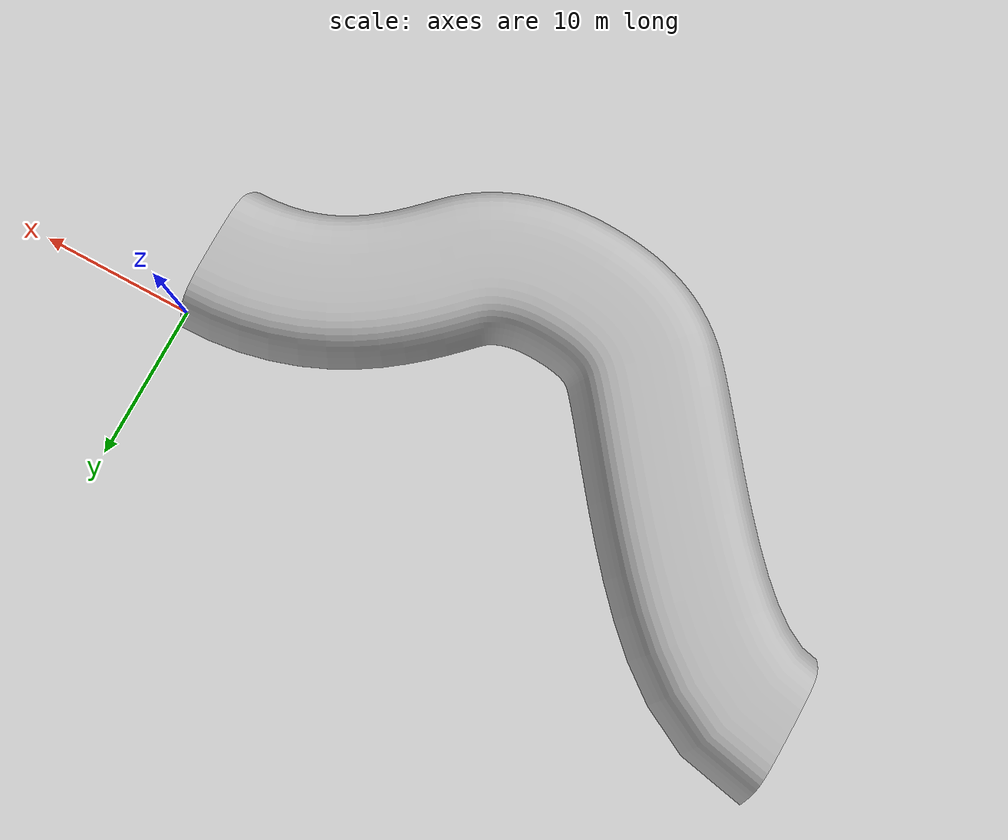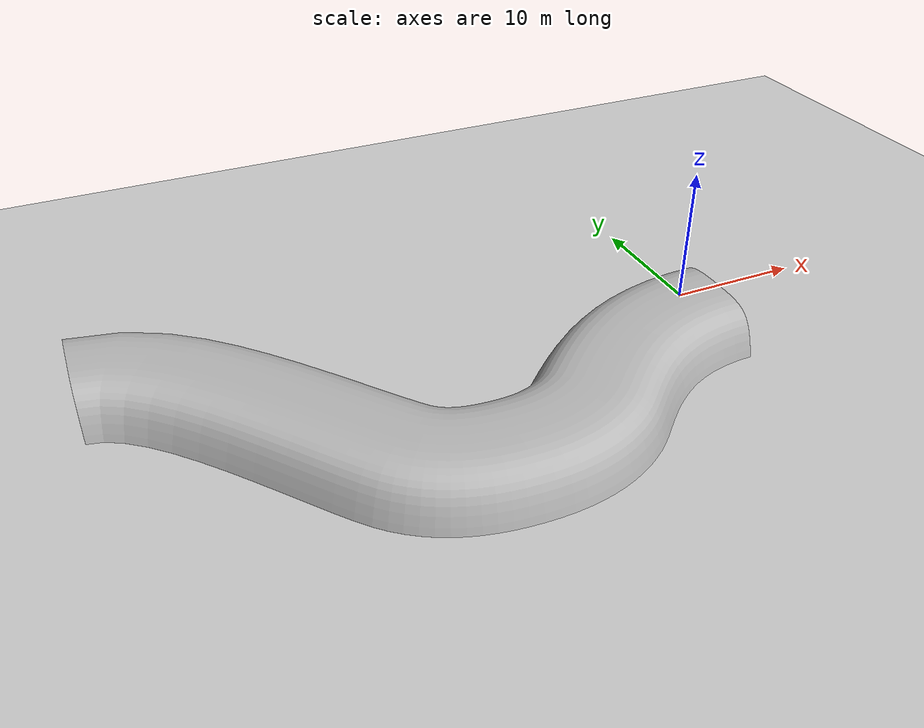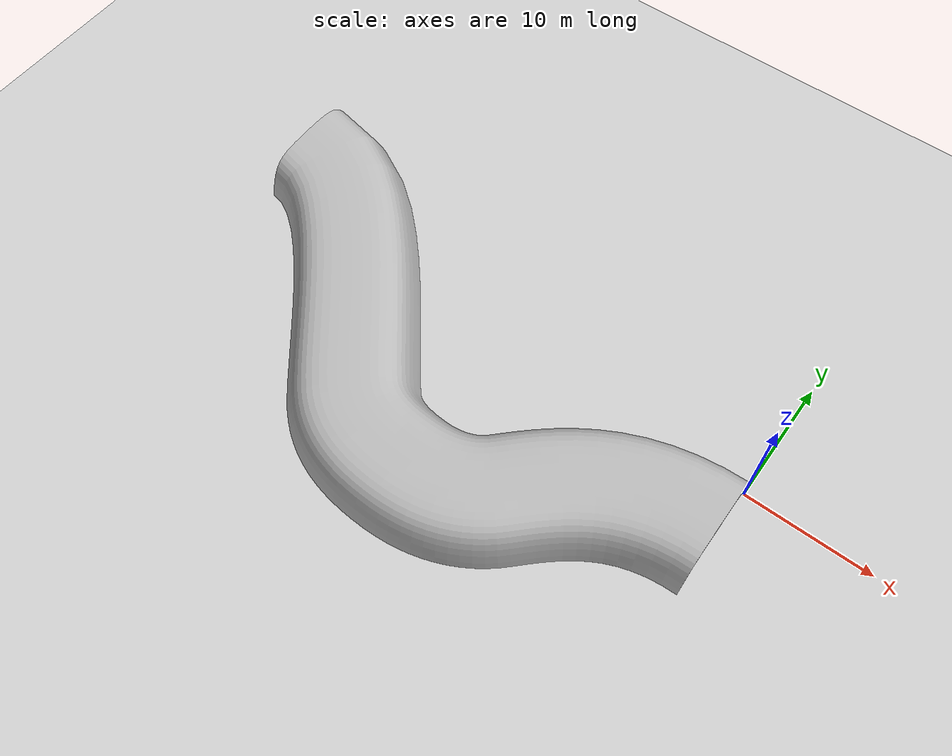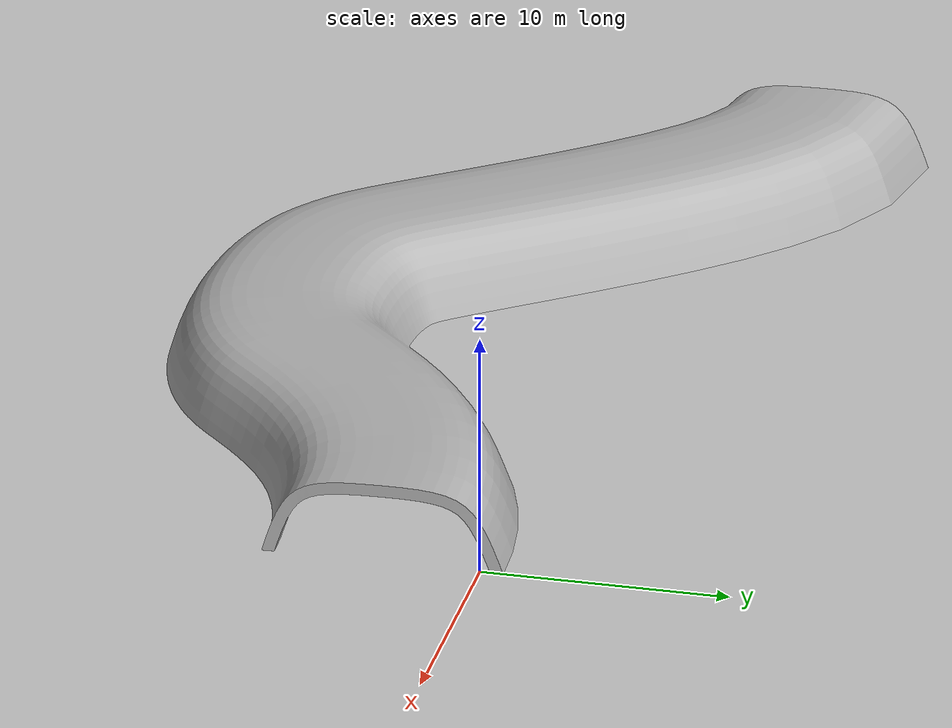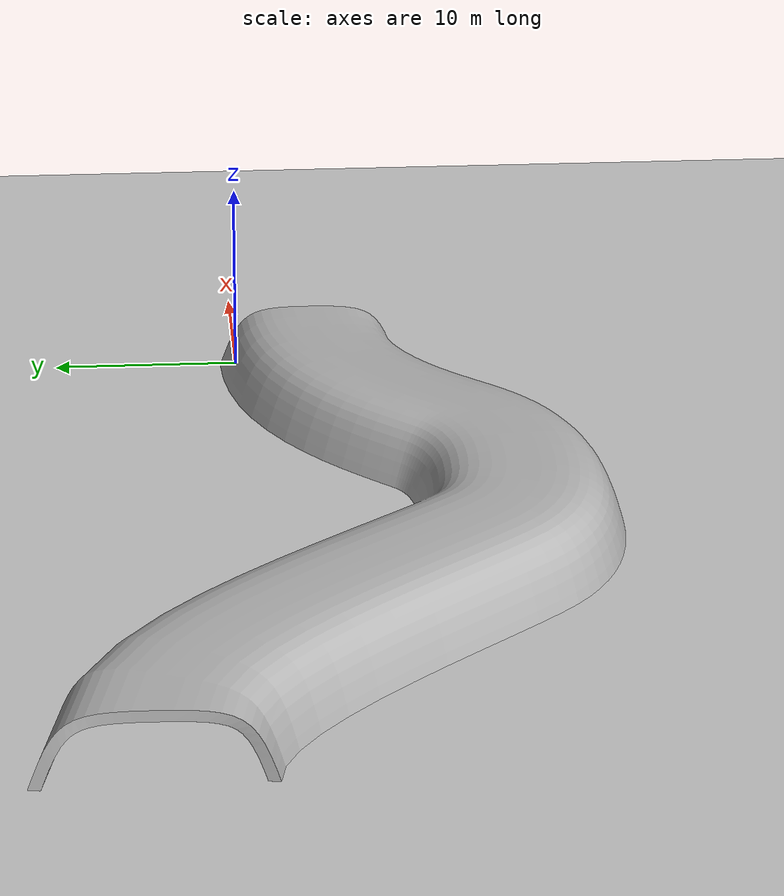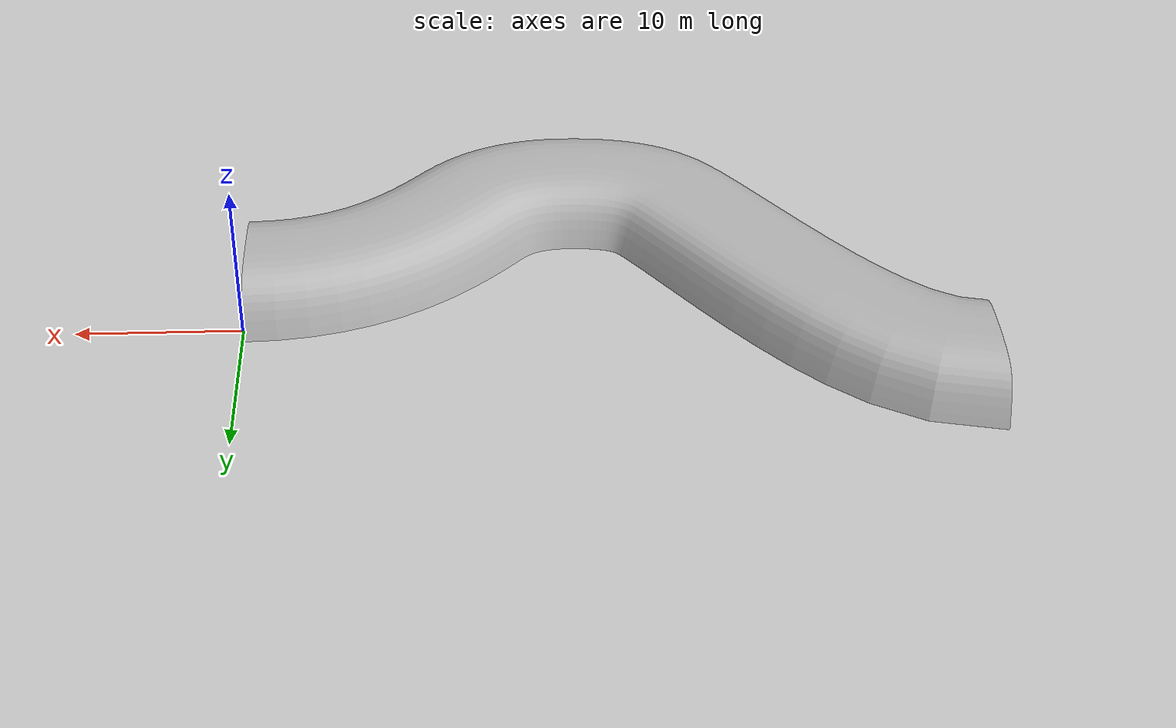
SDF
<sdf version='1.4'>
    <world name='default'>
        <!-- A global light source -->
        <include>
            <uri>model://sun</uri>
        </include>

        <!-- A ground plane -->
        <include>
            <uri>model://my_ground_plane</uri>
        </include>

        <physics type="ode">
            <real_time_update_rate>1000.0</real_time_update_rate>
            <max_step_size>0.001</max_step_size>
            <real_time_factor>1</real_time_factor>
            <ode>
                <solver>
                    <type>quick</type>
                    <iters>150</iters>
                    <precon_iters>0</precon_iters>
                    <sor>1.400000</sor>
                    <use_dynamic_moi_rescaling>1</use_dynamic_moi_rescaling>
                </solver>
                <constraints>
                    <cfm>0.00001</cfm>
                    <erp>0.2</erp>
                    <contact_max_correcting_vel>2000.000000
                    </contact_max_correcting_vel>
                    <contact_surface_layer>0.01000</contact_surface_layer>
                </constraints>
            </ode>
        </physics>

        <!-- import the model here -->
        <include>
            <uri>model://tunnel</uri>
        </include>

        <scene>
            <ambient>0.4 0.4 0.4 1</ambient>
            <background>0.7 0.7 0.7 1</background>
            <shadow>true</shadow>
        </scene>

        <gui fullscreen='0'>
            <camera name='user camera'>
            <pose>0.8 0.0 12.0 0 1.5708 0</pose>
            <view_controller>orbit</view_controller>
            </camera>
        </gui>
    </world>
</sdf>

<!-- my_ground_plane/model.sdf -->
<sdf version="1.4">
   <model name="my_ground_plane">
      <static>true</static>
      <link name="link">
         <collision name="collision">
            <geometry>
               <plane>
                  <normal>0 0 1</normal>
                  <size>200 200</size>
               </plane>
            </geometry>
            <surface>
               <friction>
                  <ode>
                     <mu>100</mu>
                     <mu2>50</mu2>
                  </ode>
               </friction>
            </surface>
         </collision>
         <visual name="visual">
            <cast_shadows>false</cast_shadows>
            <geometry>
               <plane>
                  <normal>0 0 1</normal>
                  <size>200 200</size>
               </plane>
            </geometry>
            <material>
               <script>
                  <uri>model://my_ground_plane/materials/scripts</uri>
                  <uri>model://my_ground_plane/materials/textures/</uri>
                  <name>MyGroundPlane/Image</name>
               </script>
            </material>
         </visual>
      </link>
   </model>
</sdf>

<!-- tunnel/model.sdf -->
<sdf version="1.5">
  <model name="tunnel">
    <static>true</static>
    <link name="link">
    <collision name="collision">
        <pose>0 -9 0 0 -0 0</pose>
        <geometry>
            <mesh>
                <uri>model://tunnel/meshes/tunnel.dae</uri>
                <scale>5 5 5</scale>
            </mesh>
        </geometry>
    </collision>
    <visual name="visual">
        <pose>0 -9 0 0 -0 0</pose>
        <geometry>
            <mesh>
                <uri>model://tunnel/meshes/tunnel.dae</uri>
                <scale>5 5 5</scale>
            </mesh>
        </geometry>
    </visual>
    </link>
  </model>
</sdf>
